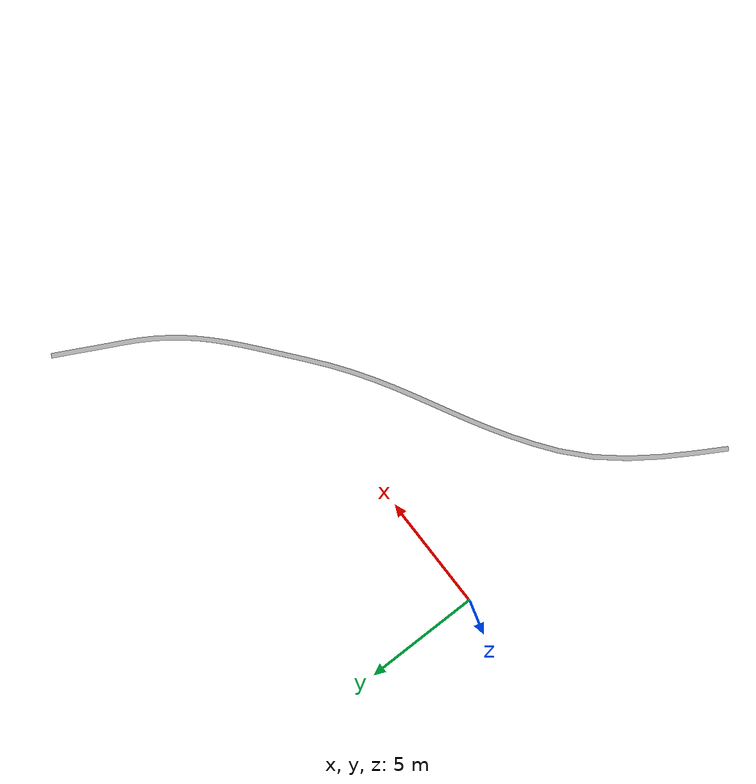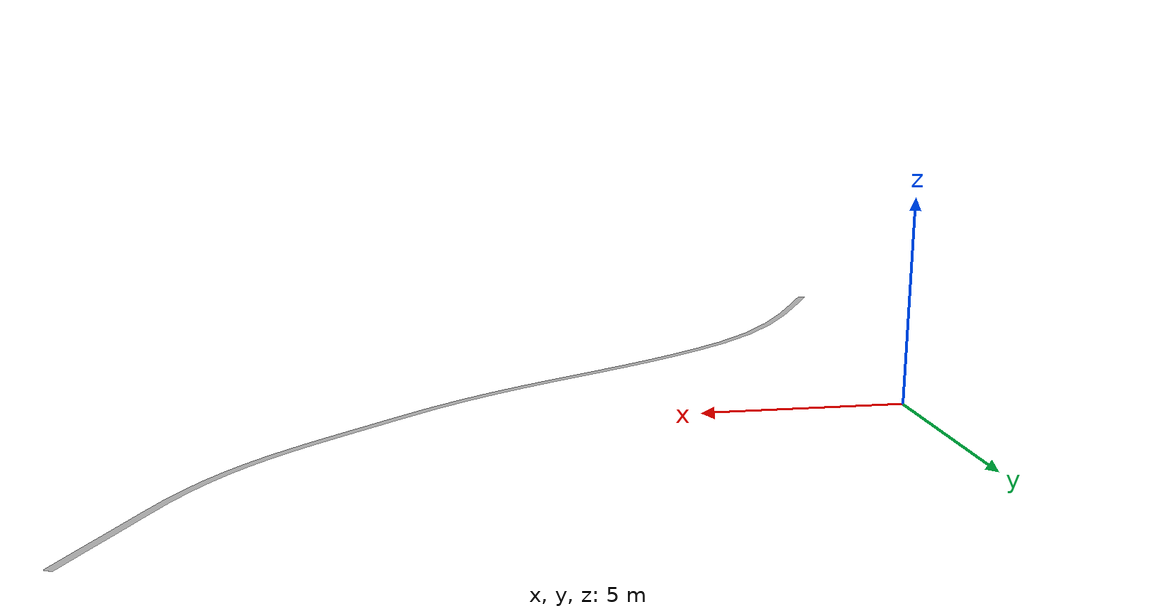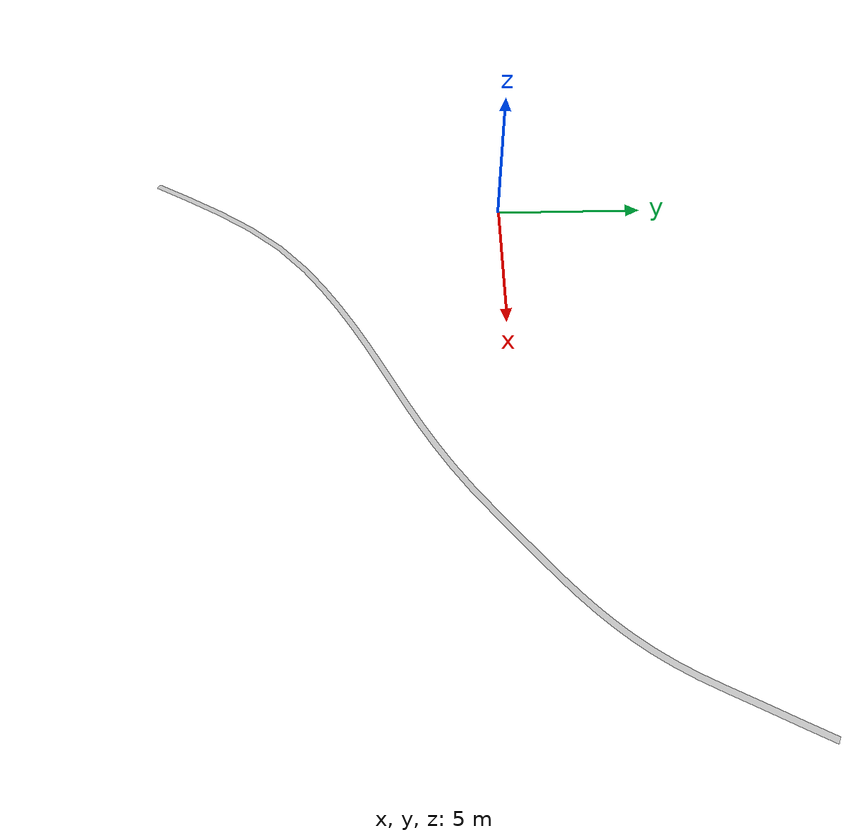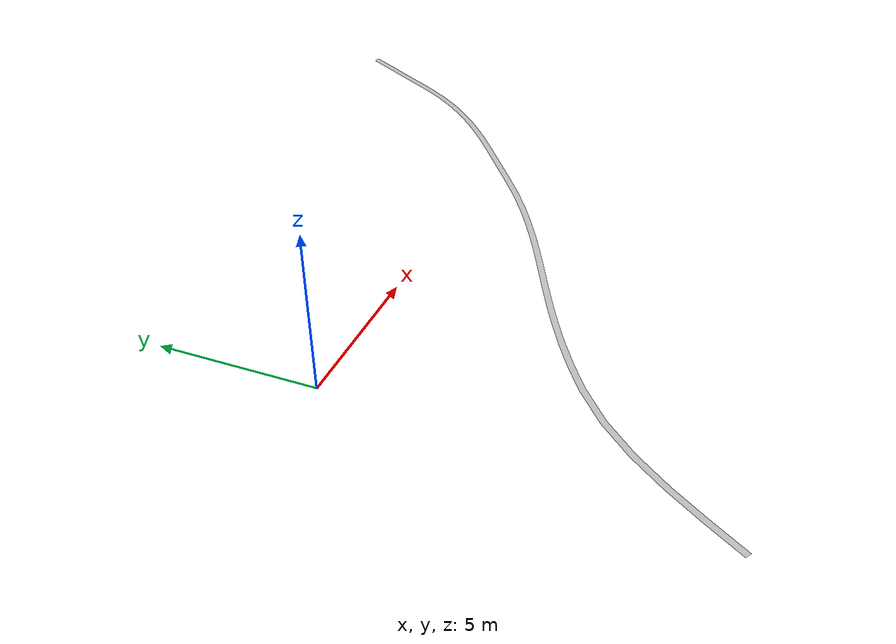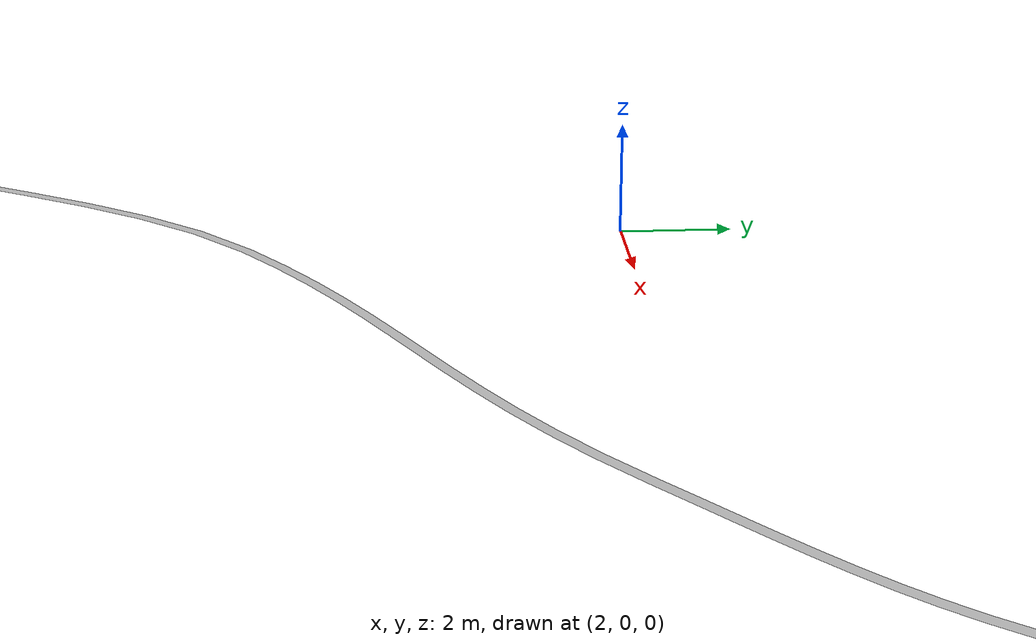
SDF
<?xml version="1.0"?>
<sdf version="1.5">
    <model name="road3_3">
        <static>true</static>
        <link name="link">
            <collision name="collision">
                <pose>0 0 0 0 0 0</pose>
                <geometry>
                    <mesh>
                        <uri>model://road3_3/meshes/road3_3.dae</uri>
                    </mesh>
                </geometry>
            </collision>
            <visual name="visual">
              <pose>0 0 0 0 0 0</pose>
              <geometry>
              <mesh>
                 <uri>model://road3_3/meshes/road3_3.dae</uri>
              </mesh>
              </geometry>
             </visual>
        </link>
    </model>
</sdf>
